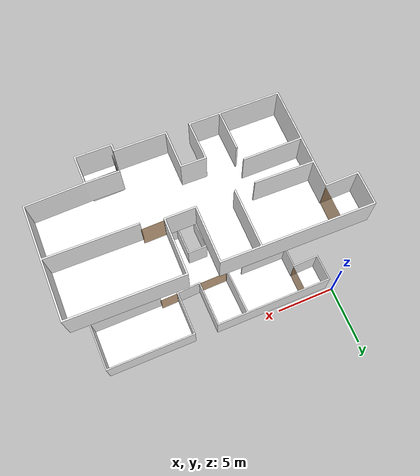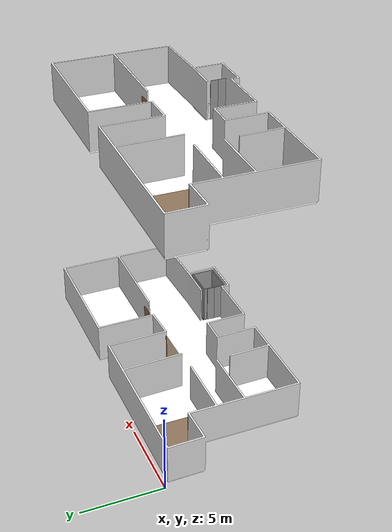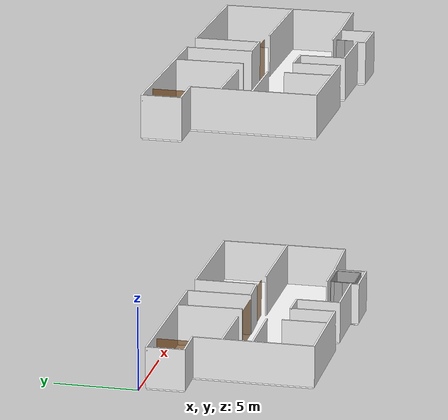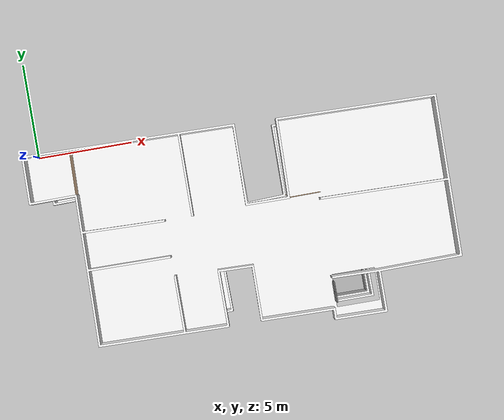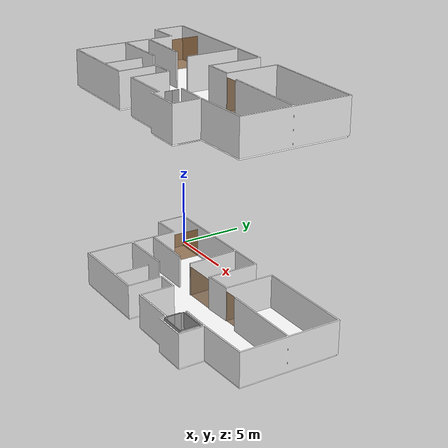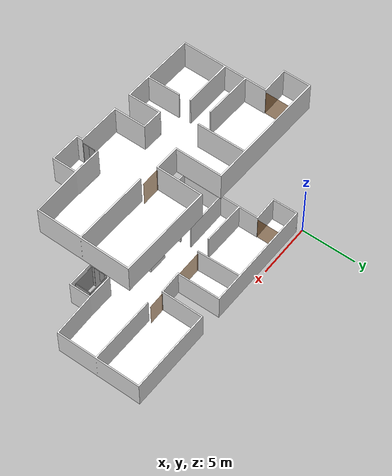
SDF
<sdf version="1.7">
 <world name="sim_world">
  <physics name="10ms" type="ode">
   <max_step_size>0.01</max_step_size>
   <real_time_factor>1.0</real_time_factor>
  </physics>
  <plugin filename="libignition-gazebo-physics-system.so" name="ignition::gazebo::systems::Physics"/>
  <plugin filename="libignition-gazebo-user-commands-system.so" name="ignition::gazebo::systems::UserCommands"/>
  <plugin filename="libignition-gazebo-scene-broadcaster-system.so" name="ignition::gazebo::systems::SceneBroadcaster"/>
  <scene><ambient>1 1 1</ambient><background>0.8 0.8 0.8</background><grid>false</grid></scene>
  <light type="directional" name="sun">
   <pose>0 0 10 0 0 0</pose>
   <diffuse>1 1 1 1</diffuse>
   <specular>0.2 0.2 0.2 1</specular>
   <attenuation>
    <range>1000</range>
    <constant>0.09</constant>
    <linear>0.001</linear>
    <quadratic>0.001</quadratic>
   </attenuation>
   <direction>-0.5 0.1 -0.9</direction>
  </light>
  <model name="shivam1">
   <pose>2.6976054820482807 -1.4763757467451941 0.0 0 0 -1.5733022700128412</pose>
   <link name="right">
    <pose>0 0 1.11 0 0 0</pose>
    <visual name="right_visual">
     <geometry><box><size>2.1029504197523576 0.03 2.2</size></box></geometry>
     <material>
      <ambient>0.5 0.25 0 0.6</ambient>
      <diffuse>0.5 0.25 0 0.6</diffuse>
      <pbr><metal><metalness>0.0</metalness></metal></pbr>
     </material>
    </visual>
    <collision name="right_collision">
     <geometry><box><size>2.1029504197523576 0.03 2.2</size></box></geometry>
     <surface><contact><collide_bitmask>0x02</collide_bitmask></contact></surface>
    </collision>
    <inertial>
     <mass>50.0</mass>
     <inertia><ixx>20.17041666666667</ixx><iyy>38.593335283069244</iyy><izz>18.430418616402573</izz></inertia>
    </inertial>
   </link>
   <joint name="right_joint" type="revolute">
    <parent>world</parent>
    <child>right</child>
    <axis><xyz>0 0 -1</xyz><limit><lower>0</lower><upper>1.57</upper></limit></axis>
    <pose>1.0564752098761787 0 0 0 0 0</pose>
   </joint>
   <plugin name="door" filename="libdoor.so">
    <v_max_door>0.5</v_max_door>
    <a_max_door>0.3</a_max_door>
    <a_nom_door>0.15</a_nom_door>
    <dx_min_door>0.01</dx_min_door>
    <f_max_door>500.0</f_max_door>
    <door name="shivam1" type="SwingDoor" left_joint_name="empty_joint" right_joint_name="right_joint"/>
   </plugin>
  </model>
  <model name="vansh">
   <pose>13.293425426669007 -4.127744203976013 0.0 0 0 -3.1187199116478794</pose>
   <link name="right">
    <pose>0 0 1.11 0 0 0</pose>
    <visual name="right_visual">
     <geometry><box><size>1.5194041702068208 0.03 2.2</size></box></geometry>
     <material>
      <ambient>0.5 0.25 0 0.6</ambient>
      <diffuse>0.5 0.25 0 0.6</diffuse>
      <pbr><metal><metalness>0.0</metalness></metal></pbr>
     </material>
    </visual>
    <collision name="right_collision">
     <geometry><box><size>1.5194041702068208 0.03 2.2</size></box></geometry>
     <surface><contact><collide_bitmask>0x02</collide_bitmask></contact></surface>
    </collision>
    <inertial>
     <mass>50.0</mass>
     <inertia><ixx>20.17041666666667</ixx><iyy>29.785787635174493</iyy><izz>9.622870968507824</izz></inertia>
    </inertial>
   </link>
   <joint name="right_joint" type="prismatic">
    <parent>world</parent>
    <child>right</child>
    <axis>
     <xyz>1 0 0</xyz>
     <limit><lower>0.0</lower><upper>1.5294041702068208</upper><effort>500.0</effort></limit>
    </axis>
   </joint>
   <plugin name="door" filename="libdoor.so">
    <v_max_door>0.2</v_max_door>
    <a_max_door>0.2</a_max_door>
    <a_nom_door>0.08</a_nom_door>
    <dx_min_door>0.001</dx_min_door>
    <f_max_door>100.0</f_max_door>
    <door name="vansh" type="SlidingDoor" left_joint_name="empty_joint" right_joint_name="right_joint"/>
   </plugin>
  </model>
  <model name="bathroom_door">
   <pose>9.27289014836865 -4.240729414996126 0.0 0 0 -3.132262553019359</pose>
   <link name="right">
    <pose>0 0 1.11 0 0 0</pose>
    <visual name="right_visual">
     <geometry><box><size>2.518037133054473 0.03 2.2</size></box></geometry>
     <material>
      <ambient>0.5 0.25 0 0.6</ambient>
      <diffuse>0.5 0.25 0 0.6</diffuse>
      <pbr><metal><metalness>0.0</metalness></metal></pbr>
     </material>
    </visual>
    <collision name="right_collision">
     <geometry><box><size>2.518037133054473 0.03 2.2</size></box></geometry>
     <surface><contact><collide_bitmask>0x02</collide_bitmask></contact></surface>
    </collision>
    <inertial>
     <mass>50.0</mass>
     <inertia><ixx>20.17041666666667</ixx><iyy>46.585462514338296</iyy><izz>26.42254584767162</izz></inertia>
    </inertial>
   </link>
   <joint name="right_joint" type="prismatic">
    <parent>world</parent>
    <child>right</child>
    <axis>
     <xyz>1 0 0</xyz>
     <limit><lower>0.0</lower><upper>2.5280371330544726</upper><effort>500.0</effort></limit>
    </axis>
   </joint>
   <plugin name="door" filename="libdoor.so">
    <v_max_door>0.2</v_max_door>
    <a_max_door>0.2</a_max_door>
    <a_nom_door>0.08</a_nom_door>
    <dx_min_door>0.001</dx_min_door>
    <f_max_door>100.0</f_max_door>
    <door name="bathroom_door" type="SlidingDoor" left_joint_name="empty_joint" right_joint_name="right_joint"/>
   </plugin>
  </model>
  <include><name>floor_L1</name><uri>model://floor_L1</uri></include>
  <model name="aastha">
   <pose>2.4902160322544162 -1.400074297533913 15.0 0 0 -1.5879682428748838</pose>
   <link name="right">
    <pose>0 0 1.11 0 0 0</pose>
    <visual name="right_visual">
     <geometry><box><size>2.141750900063632 0.03 2.2</size></box></geometry>
     <material>
      <ambient>0.5 0.25 0 0.6</ambient>
      <diffuse>0.5 0.25 0 0.6</diffuse>
      <pbr><metal><metalness>0.0</metalness></metal></pbr>
     </material>
    </visual>
    <collision name="right_collision">
     <geometry><box><size>2.141750900063632 0.03 2.2</size></box></geometry>
     <surface><contact><collide_bitmask>0x02</collide_bitmask></contact></surface>
    </collision>
    <inertial>
     <mass>50.0</mass>
     <inertia><ixx>20.17041666666667</ixx><iyy>39.279570491347414</iyy><izz>19.116653824680743</izz></inertia>
    </inertial>
   </link>
   <joint name="right_joint" type="revolute">
    <parent>world</parent>
    <child>right</child>
    <axis><xyz>0 0 -1</xyz><limit><lower>0</lower><upper>1.57</upper></limit></axis>
    <pose>1.075875450031816 0 0 0 0 0</pose>
   </joint>
   <plugin name="door" filename="libdoor.so">
    <v_max_door>0.5</v_max_door>
    <a_max_door>0.3</a_max_door>
    <a_nom_door>0.15</a_nom_door>
    <dx_min_door>0.01</dx_min_door>
    <f_max_door>500.0</f_max_door>
    <door name="aastha" type="SwingDoor" left_joint_name="empty_joint" right_joint_name="right_joint"/>
   </plugin>
  </model>
  <model name="augi">
   <pose>13.239850918136394 -4.258085862584382 15.0 0 0 -3.133385884509922</pose>
   <link name="right">
    <pose>0 0 1.11 0 0 0</pose>
    <visual name="right_visual">
     <geometry><box><size>1.5474888880683253 0.03 2.2</size></box></geometry>
     <material>
      <ambient>0.5 0.25 0 0.6</ambient>
      <diffuse>0.5 0.25 0 0.6</diffuse>
      <pbr><metal><metalness>0.0</metalness></metal></pbr>
     </material>
    </visual>
    <collision name="right_collision">
     <geometry><box><size>1.5474888880683253 0.03 2.2</size></box></geometry>
     <surface><contact><collide_bitmask>0x02</collide_bitmask></contact></surface>
    </collision>
    <inertial>
     <mass>50.0</mass>
     <inertia><ixx>20.17041666666667</ixx><iyy>30.14467441122893</iyy><izz>9.981757744562259</izz></inertia>
    </inertial>
   </link>
   <joint name="right_joint" type="prismatic">
    <parent>world</parent>
    <child>right</child>
    <axis>
     <xyz>1 0 0</xyz>
     <limit><lower>0.0</lower><upper>1.5574888880683253</upper><effort>500.0</effort></limit>
    </axis>
   </joint>
   <plugin name="door" filename="libdoor.so">
    <v_max_door>0.2</v_max_door>
    <a_max_door>0.2</a_max_door>
    <a_nom_door>0.08</a_nom_door>
    <dx_min_door>0.001</dx_min_door>
    <f_max_door>100.0</f_max_door>
    <door name="augi" type="SlidingDoor" left_joint_name="empty_joint" right_joint_name="right_joint"/>
   </plugin>
  </model>
  <include><name>floor_L2</name><uri>model://floor_L2</uri><pose>0 0 15.0 0 0 0</pose></include>
  <model name="ShaftDoor_shivam_L1_name">
   <pose>13.925554596748817 -9.092301005168926 0.0 0 0 1.57</pose>
   <link name="right_door">
    <pose>0.25 0 1.25 0 0 0</pose>
    <visual name="right_door_visual">
     <geometry><box><size>0.5 0.03 2.5</size></box></geometry>
     <material>
      <ambient>0.5 0.5 0.5 1</ambient>
      <diffuse>0.7 0.7 0.7 1</diffuse>
      <specular>0.6 0.6 0.6 1</specular>
      <emissive>0.1 0.1 0.1 1</emissive>
     </material>
    </visual>
    <collision name="right_door_collision">
     <geometry><box><size>0.5 0.03 2.5</size></box></geometry>
     <surface><contact><collide_bitmask>0x02</collide_bitmask></contact></surface>
    </collision>
   </link>
   <joint name="right_joint" type="prismatic">
    <parent>world</parent>
    <child>right_door</child>
    <axis><xyz>1 0 0</xyz><limit><lower>0</lower><upper>0.5</upper></limit></axis>
   </joint>
   <link name="left_door">
    <pose>-0.25 0 1.25 0 0 0</pose>
    <visual name="left_door_visual">
     <geometry><box><size>0.5 0.03 2.5</size></box></geometry>
     <material>
      <ambient>0.5 0.5 0.5 1</ambient>
      <diffuse>0.7 0.7 0.7 1</diffuse>
      <specular>0.6 0.6 0.6 1</specular>
      <emissive>0.1 0.1 0.1 1</emissive>
     </material>
    </visual>
    <collision name="left_door_collision">
     <geometry><box><size>0.5 0.03 2.5</size></box></geometry>
     <surface><contact><collide_bitmask>0x02</collide_bitmask></contact></surface>
    </collision>
   </link>
   <joint name="left_joint" type="prismatic">
    <parent>world</parent>
    <child>left_door</child>
    <axis><xyz>1 0 0</xyz><limit><lower>-0.5</lower><upper>0</upper></limit></axis>
   </joint>
   <link name="ramp">
    <pose>0 0 -0.025 0 0 0</pose>
    <visual name="ramp_visual">
     <geometry><box><size>1.0 0.1 0.05</size></box></geometry>
     <material>
      <ambient>0.5 0.5 0.5 1</ambient>
      <diffuse>0.7 0.7 0.7 1</diffuse>
      <specular>0.6 0.6 0.6 1</specular>
      <emissive>0.1 0.1 0.1 1</emissive>
     </material>
    </visual>
    <collision name="ramp_collision">
     <geometry><box><size>1.0 0.1 0.05</size></box></geometry>
     <surface><contact><collide_bitmask>0x02</collide_bitmask></contact></surface>
    </collision>
   </link>
   <joint name="ramp_joint" type="fixed"><parent>world</parent><child>ramp</child></joint>
   <plugin name="door" filename="libdoor.so">
    <v_max_door>0.3</v_max_door>
    <a_max_door>0.2</a_max_door>
    <a_nom_door>0.1</a_nom_door>
    <dx_min_door>0.0001</dx_min_door>
    <f_max_door>35.0</f_max_door>
    <door left_joint_name="left_joint" name="ShaftDoor_shivam_L1_name" right_joint_name="right_joint" type="DoubleSlidingDoor"/>
   </plugin>
  </model>
  <model name="ShaftDoor_shivam_L2_name">
   <pose>13.925554596748817 -9.092301005168926 15.0 0 0 1.57</pose>
   <link name="right_door">
    <pose>0.25 0 1.25 0 0 0</pose>
    <visual name="right_door_visual">
     <geometry><box><size>0.5 0.03 2.5</size></box></geometry>
     <material>
      <ambient>0.5 0.5 0.5 1</ambient>
      <diffuse>0.7 0.7 0.7 1</diffuse>
      <specular>0.6 0.6 0.6 1</specular>
      <emissive>0.1 0.1 0.1 1</emissive>
     </material>
    </visual>
    <collision name="right_door_collision">
     <geometry><box><size>0.5 0.03 2.5</size></box></geometry>
     <surface><contact><collide_bitmask>0x02</collide_bitmask></contact></surface>
    </collision>
   </link>
   <joint name="right_joint" type="prismatic">
    <parent>world</parent>
    <child>right_door</child>
    <axis><xyz>1 0 0</xyz><limit><lower>0</lower><upper>0.5</upper></limit></axis>
   </joint>
   <link name="left_door">
    <pose>-0.25 0 1.25 0 0 0</pose>
    <visual name="left_door_visual">
     <geometry><box><size>0.5 0.03 2.5</size></box></geometry>
     <material>
      <ambient>0.5 0.5 0.5 1</ambient>
      <diffuse>0.7 0.7 0.7 1</diffuse>
      <specular>0.6 0.6 0.6 1</specular>
      <emissive>0.1 0.1 0.1 1</emissive>
     </material>
    </visual>
    <collision name="left_door_collision">
     <geometry><box><size>0.5 0.03 2.5</size></box></geometry>
     <surface><contact><collide_bitmask>0x02</collide_bitmask></contact></surface>
    </collision>
   </link>
   <joint name="left_joint" type="prismatic">
    <parent>world</parent>
    <child>left_door</child>
    <axis><xyz>1 0 0</xyz><limit><lower>-0.5</lower><upper>0</upper></limit></axis>
   </joint>
   <link name="ramp">
    <pose>0 0 -0.025 0 0 0</pose>
    <visual name="ramp_visual">
     <geometry><box><size>1.0 0.1 0.05</size></box></geometry>
     <material>
      <ambient>0.5 0.5 0.5 1</ambient>
      <diffuse>0.7 0.7 0.7 1</diffuse>
      <specular>0.6 0.6 0.6 1</specular>
      <emissive>0.1 0.1 0.1 1</emissive>
     </material>
    </visual>
    <collision name="ramp_collision">
     <geometry><box><size>1.0 0.1 0.05</size></box></geometry>
     <surface><contact><collide_bitmask>0x02</collide_bitmask></contact></surface>
    </collision>
   </link>
   <joint name="ramp_joint" type="fixed"><parent>world</parent><child>ramp</child></joint>
   <plugin name="door" filename="libdoor.so">
    <v_max_door>0.3</v_max_door>
    <a_max_door>0.2</a_max_door>
    <a_nom_door>0.1</a_nom_door>
    <dx_min_door>0.0001</dx_min_door>
    <f_max_door>35.0</f_max_door>
    <door left_joint_name="left_joint" name="ShaftDoor_shivam_L2_name" right_joint_name="right_joint" type="DoubleSlidingDoor"/>
   </plugin>
  </model>
  <model name="shivam">
   <link name="platform">
    <inertial>
     <mass>1200</mass>
     <inertia><ixx>400.25000000000006</ixx><iyy>225.25</iyy><izz>625.0</izz></inertia>
    </inertial>
    <visual name="floor_visual">
     <pose>0 0 -0.025 0 0 0</pose>
     <geometry><box><size>2.0 1.5 0.05</size></box></geometry>
     <material>
      <ambient>0.5 0.5 0.5 1</ambient>
      <diffuse>0.7 0.7 0.7 1</diffuse>
      <specular>0.6 0.6 0.6 1</specular>
      <emissive>0.1 0.1 0.1 1</emissive>
     </material>
    </visual>
    <collision name="floor_collision">
     <pose>0 0 -0.025 0 0 0</pose>
     <geometry><box><size>2.0 1.5 0.05</size></box></geometry>
     <surface><contact><collide_bitmask>0x01</collide_bitmask></contact></surface>
    </collision>
    <visual name="frontwall1_visual">
     <pose>0.0 0.725 1.25 0 0 0</pose>
     <geometry><box><size>2.0 0.05 2.5</size></box></geometry>
     <material>
      <ambient>0.5 0.5 0.5 1</ambient>
      <diffuse>0.7 0.7 0.7 1</diffuse>
      <specular>0.6 0.6 0.6 1</specular>
      <emissive>0.1 0.1 0.1 1</emissive>
     </material>
    </visual>
    <collision name="frontwall1_collision">
     <pose>0.0 0.725 1.25 0 0 0</pose>
     <geometry><box><size>2.0 0.05 2.5</size></box></geometry>
     <surface><contact><collide_bitmask>0x01</collide_bitmask></contact></surface>
    </collision>
    <visual name="backwall1_visual">
     <pose>0.0 -0.725 1.25 0 0 0</pose>
     <geometry><box><size>2.0 0.05 2.5</size></box></geometry>
     <material>
      <ambient>0.5 0.5 0.5 1</ambient>
      <diffuse>0.7 0.7 0.7 1</diffuse>
      <specular>0.6 0.6 0.6 1</specular>
      <emissive>0.1 0.1 0.1 1</emissive>
     </material>
    </visual>
    <collision name="backwall1_collision">
     <pose>0.0 -0.725 1.25 0 0 0</pose>
     <geometry><box><size>2.0 0.05 2.5</size></box></geometry>
     <surface><contact><collide_bitmask>0x01</collide_bitmask></contact></surface>
    </collision>
    <visual name="leftwall1_visual">
     <pose>-0.975 -0.6 1.25 0 0 1.5707963267948966</pose>
     <geometry><box><size>0.19999999999999996 0.05 2.5</size></box></geometry>
     <material>
      <ambient>0.5 0.5 0.5 1</ambient>
      <diffuse>0.7 0.7 0.7 1</diffuse>
      <specular>0.6 0.6 0.6 1</specular>
      <emissive>0.1 0.1 0.1 1</emissive>
     </material>
    </visual>
    <collision name="leftwall1_collision">
     <pose>-0.975 -0.6 1.25 0 0 1.5707963267948966</pose>
     <geometry><box><size>0.19999999999999996 0.05 2.5</size></box></geometry>
     <surface><contact><collide_bitmask>0x01</collide_bitmask></contact></surface>
    </collision>
    <visual name="leftwall2_visual">
     <pose>-0.975 0.6 1.25 0 0 1.5707963267948966</pose>
     <geometry><box><size>0.19999999999999996 0.05 2.5</size></box></geometry>
     <material>
      <ambient>0.5 0.5 0.5 1</ambient>
      <diffuse>0.7 0.7 0.7 1</diffuse>
      <specular>0.6 0.6 0.6 1</specular>
      <emissive>0.1 0.1 0.1 1</emissive>
     </material>
    </visual>
    <collision name="leftwall2_collision">
     <pose>-0.975 0.6 1.25 0 0 1.5707963267948966</pose>
     <geometry><box><size>0.19999999999999996 0.05 2.5</size></box></geometry>
     <surface><contact><collide_bitmask>0x01</collide_bitmask></contact></surface>
    </collision>
    <visual name="rightwall1_visual">
     <pose>0.975 0.0 1.25 0 0 1.5707963267948966</pose>
     <geometry><box><size>1.4 0.05 2.5</size></box></geometry>
     <material>
      <ambient>0.5 0.5 0.5 1</ambient>
      <diffuse>0.7 0.7 0.7 1</diffuse>
      <specular>0.6 0.6 0.6 1</specular>
      <emissive>0.1 0.1 0.1 1</emissive>
     </material>
    </visual>
    <collision name="rightwall1_collision">
     <pose>0.975 0.0 1.25 0 0 1.5707963267948966</pose>
     <geometry><box><size>1.4 0.05 2.5</size></box></geometry>
     <surface><contact><collide_bitmask>0x01</collide_bitmask></contact></surface>
    </collision>
   </link>
   <joint name="cabin_joint" type="prismatic">
    <parent>world</parent>
    <child>platform</child>
    <axis><xyz>0 0 1</xyz></axis>
   </joint>
   <link name="CabinDoor_shivam_name_right_door">
    <pose>-0.9748009183223166 0.24999992073295865 1.25 0 0 1.57</pose>
    <visual name="CabinDoor_shivam_name_right_door_visual">
     <geometry><box><size>0.5 0.03 2.5</size></box></geometry>
     <material>
      <ambient>0.5 0.5 0.5 1</ambient>
      <diffuse>0.7 0.7 0.7 1</diffuse>
      <specular>0.6 0.6 0.6 1</specular>
      <emissive>0.1 0.1 0.1 1</emissive>
     </material>
    </visual>
    <collision name="CabinDoor_shivam_name_right_door_collision">
     <geometry><box><size>0.5 0.03 2.5</size></box></geometry>
     <surface><contact><collide_bitmask>0x02</collide_bitmask></contact></surface>
    </collision>
   </link>
   <joint name="CabinDoor_shivam_name_right_joint" type="prismatic">
    <parent>platform</parent>
    <child>CabinDoor_shivam_name_right_door</child>
    <axis><xyz>1 0 0</xyz><limit><lower>0</lower><upper>0.5</upper></limit></axis>
   </joint>
   <link name="CabinDoor_shivam_name_left_door">
    <pose>-0.9751990816776833 -0.24999992073295865 1.25 0 0 1.57</pose>
    <visual name="CabinDoor_shivam_name_left_door_visual">
     <geometry><box><size>0.5 0.03 2.5</size></box></geometry>
     <material>
      <ambient>0.5 0.5 0.5 1</ambient>
      <diffuse>0.7 0.7 0.7 1</diffuse>
      <specular>0.6 0.6 0.6 1</specular>
      <emissive>0.1 0.1 0.1 1</emissive>
     </material>
    </visual>
    <collision name="CabinDoor_shivam_name_left_door_collision">
     <geometry><box><size>0.5 0.03 2.5</size></box></geometry>
     <surface><contact><collide_bitmask>0x02</collide_bitmask></contact></surface>
    </collision>
   </link>
   <joint name="CabinDoor_shivam_name_left_joint" type="prismatic">
    <parent>platform</parent>
    <child>CabinDoor_shivam_name_left_door</child>
    <axis><xyz>1 0 0</xyz><limit><lower>-0.5</lower><upper>0</upper></limit></axis>
   </joint>
   <plugin name="door" filename="libdoor.so">
    <v_max_door>0.3</v_max_door>
    <a_max_door>0.2</a_max_door>
    <a_nom_door>0.1</a_nom_door>
    <dx_min_door>0.0001</dx_min_door>
    <f_max_door>35.0</f_max_door>
    <door left_joint_name="CabinDoor_shivam_name_left_joint" name="CabinDoor_shivam_name" right_joint_name="CabinDoor_shivam_name_right_joint" type="DoubleSlidingDoor"/>
   </plugin>
   <plugin name="lift" filename="liblift.so">
    <lift_name>shivam</lift_name>
    <floor name="L1" elevation="0.0">
     <door_pair cabin_door="CabinDoor_shivam_name" shaft_door="ShaftDoor_shivam_L1_name"/>
    </floor>
    <floor name="L2" elevation="0.0">
     <door_pair cabin_door="CabinDoor_shivam_name" shaft_door="ShaftDoor_shivam_L2_name"/>
    </floor>
    <initial_floor>L1</initial_floor>
    <v_max_cabin>2.0</v_max_cabin>
    <a_max_cabin>1.2</a_max_cabin>
    <a_nom_cabin>1.0</a_nom_cabin>
    <dx_min_cabin>0.001</dx_min_cabin>
    <f_max_cabin>25323.0</f_max_cabin>
    <cabin_joint_name>cabin_joint</cabin_joint_name>
   </plugin>
   <pose>14.975554596748818 -9.092301005168926 0 0 0 0.0</pose>
  </model>
  <rmf_charger_waypoints name="charger_waypoints">
   <rmf_vertex name="tinyrobotspawn" x="7.477615314898044" y="-8.78621136603609" level="L1"/>
  </rmf_charger_waypoints>
 </world>
</sdf>

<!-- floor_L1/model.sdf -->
<sdf version="1.7">
  <model name="floor_L1">
    <static>true</static>
    <link name="floor_1">
      <visual name="visual">
        <geometry>
          <mesh>
            <uri>model://floor_L1/meshes/floor_1.obj</uri>
          </mesh>
        </geometry>
        <material>
          <diffuse>1.0 1.0 1.0</diffuse>
          <specular>0.1 0.1 0.1</specular>
          <pbr>
            <metal>
              <metalness>0.0</metalness>
              <albedo_map>model://floor_L1/meshes/blue_linoleum.png</albedo_map>
            </metal>
          </pbr>
          <script>
            <uri>model://floor_L1/meshes/</uri>
            <name>floor_1_Diffuse</name>
          </script>
        </material>
      </visual>
      <collision name="collision">
        <geometry>
          <mesh>
            <uri>model://floor_L1/meshes/floor_1.obj</uri>
          </mesh>
        </geometry>
        <surface>
          <contact>
            <collide_bitmask>0x01</collide_bitmask>
          </contact>
        </surface>
      </collision>
    </link>
    <link name="wall_1">
      <visual name="wall_1">
        <geometry>
          <mesh>
            <uri>model://floor_L1/meshes/wall_1.obj</uri>
          </mesh>
        </geometry>
        <transparency>0.0</transparency>
        <material>
          <diffuse>1.0 1.0 1.0</diffuse>
          <specular>0.1 0.1 0.1</specular>
          <pbr>
            <metal>
              <metalness>0.0</metalness>
              <albedo_map>model://floor_L1/meshes/default.png</albedo_map>
            </metal>
          </pbr>
          <script>
            <uri>model://floor_L1/meshes/</uri>
            <name>wall_1_Diffuse</name>
          </script>
        </material>
      </visual>
      <collision name="collision">
        <geometry>
          <mesh>
            <uri>model://floor_L1/meshes/wall_1.obj</uri>
          </mesh>
        </geometry>
        <surface>
          <contact>
            <collide_bitmask>0x01</collide_bitmask>
          </contact>
        </surface>
      </collision>
      <pose>0.4242530052977175 -10.131978406440359 0 0 0 0</pose>
    </link>
  </model>
</sdf>

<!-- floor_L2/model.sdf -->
<sdf version="1.7">
  <model name="floor_L2">
    <static>true</static>
    <link name="floor_1">
      <visual name="visual">
        <geometry>
          <mesh>
            <uri>model://floor_L2/meshes/floor_1.obj</uri>
          </mesh>
        </geometry>
        <material>
          <diffuse>1.0 1.0 1.0</diffuse>
          <specular>0.1 0.1 0.1</specular>
          <pbr>
            <metal>
              <metalness>0.0</metalness>
              <albedo_map>model://floor_L2/meshes/blue_linoleum.png</albedo_map>
            </metal>
          </pbr>
          <script>
            <uri>model://floor_L2/meshes/</uri>
            <name>floor_1_Diffuse</name>
          </script>
        </material>
      </visual>
      <collision name="collision">
        <geometry>
          <mesh>
            <uri>model://floor_L2/meshes/floor_1.obj</uri>
          </mesh>
        </geometry>
        <surface>
          <contact>
            <collide_bitmask>0x01</collide_bitmask>
          </contact>
        </surface>
      </collision>
    </link>
    <link name="wall_1">
      <visual name="wall_1">
        <geometry>
          <mesh>
            <uri>model://floor_L2/meshes/wall_1.obj</uri>
          </mesh>
        </geometry>
        <transparency>0.0</transparency>
        <material>
          <diffuse>1.0 1.0 1.0</diffuse>
          <specular>0.1 0.1 0.1</specular>
          <pbr>
            <metal>
              <metalness>0.0</metalness>
              <albedo_map>model://floor_L2/meshes/default.png</albedo_map>
            </metal>
          </pbr>
          <script>
            <uri>model://floor_L2/meshes/</uri>
            <name>wall_1_Diffuse</name>
          </script>
        </material>
      </visual>
      <collision name="collision">
        <geometry>
          <mesh>
            <uri>model://floor_L2/meshes/wall_1.obj</uri>
          </mesh>
        </geometry>
        <surface>
          <contact>
            <collide_bitmask>0x01</collide_bitmask>
          </contact>
        </surface>
      </collision>
      <pose>0.20125734666272854 -10.414690707008683 0 0 0 0</pose>
    </link>
  </model>
</sdf>
